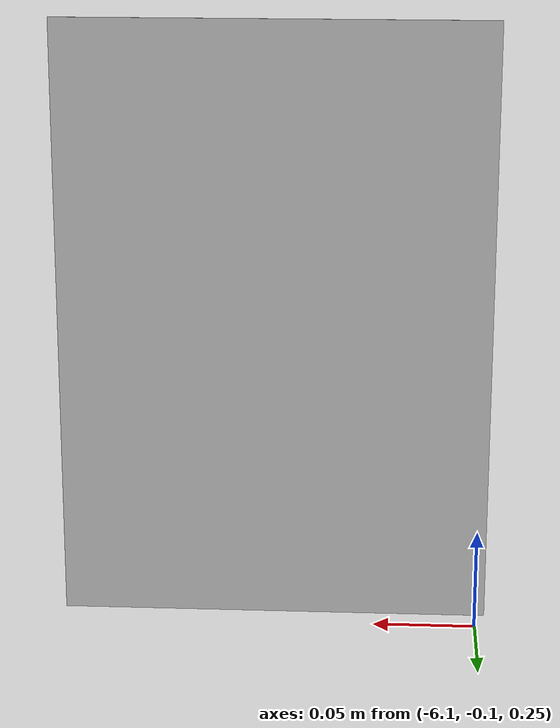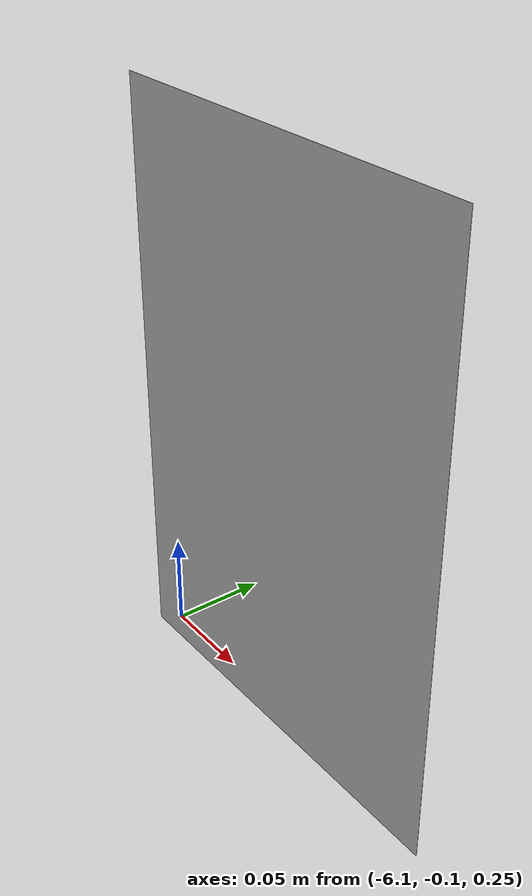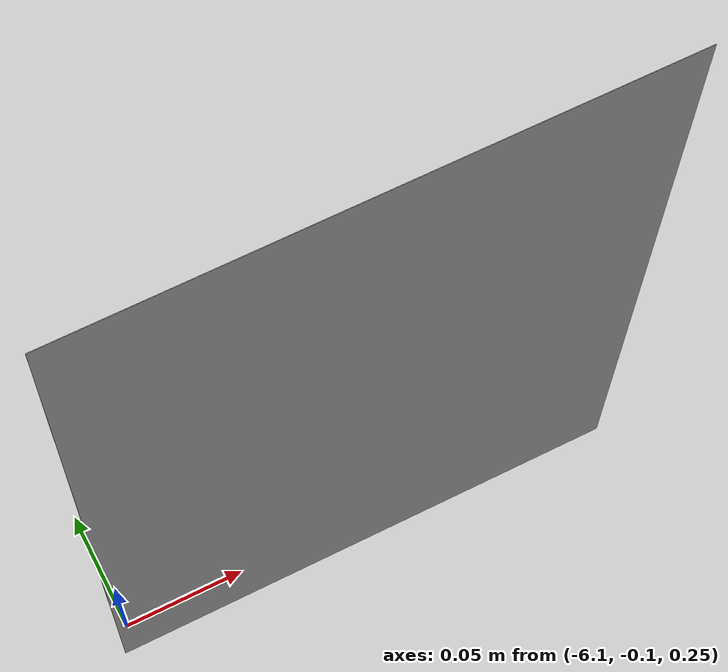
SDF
<?xml version="1.0"?>
<sdf version="1.4">
<model name="cluedo_weapon">
  <static>true</static>
    <link name="link">
      <collision name="collision">
        <geometry>
          <plane>
            <normal>0 0 1</normal>
            <size>0.21 0.297</size>
          </plane>
        </geometry>
        <surface>
          <friction>
            <ode>
              <mu>100</mu>
              <mu2>50</mu2>
            </ode>
          </friction>
        </surface>
      </collision>
      <visual name="visual">
      <pose>-6 -0.11 0.4 1.57 0 0</pose>
        <cast_shadows>false</cast_shadows>
        <geometry>
          <plane>
            <normal>0 0 1</normal>
            <size>0.21 0.297</size>
          </plane>
        </geometry>
        <material>
          <script>
            <uri>model://cluedo_weapon/materials/scripts</uri>
            <uri>model://cluedo_weapon/materials/textures</uri>
            <name>Cluedo_weapon/Image</name>
          </script>
        </material>
      </visual>
    </link>
  </model>
</sdf>
